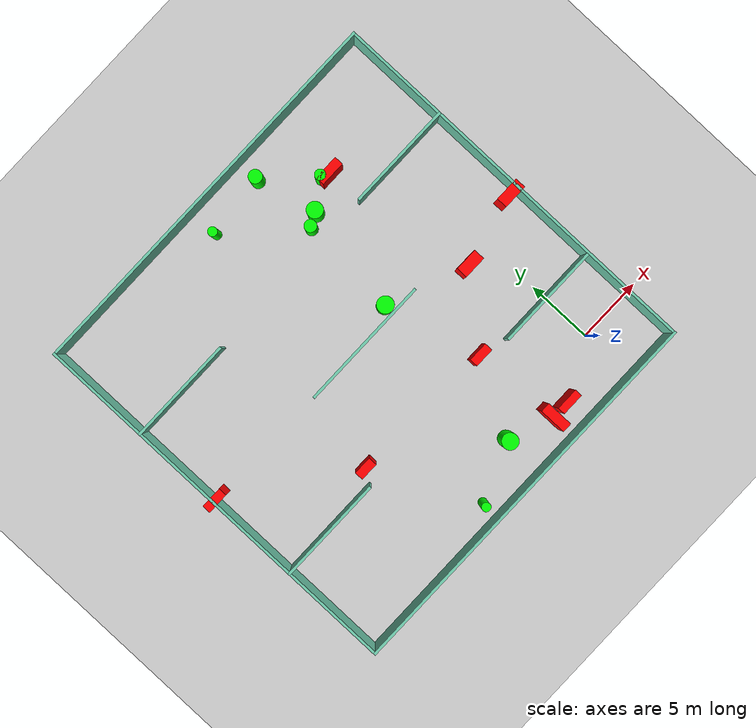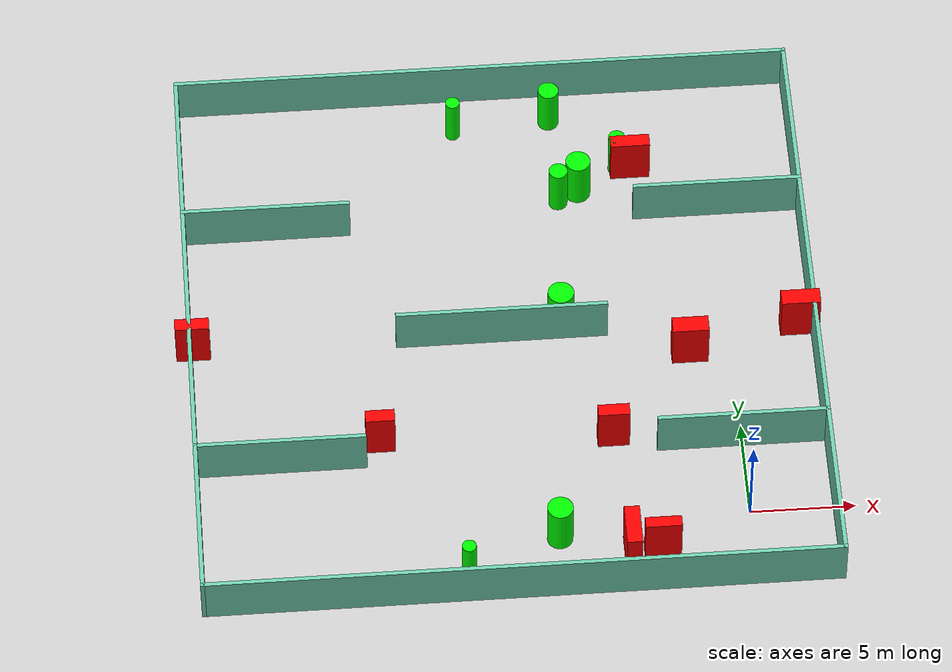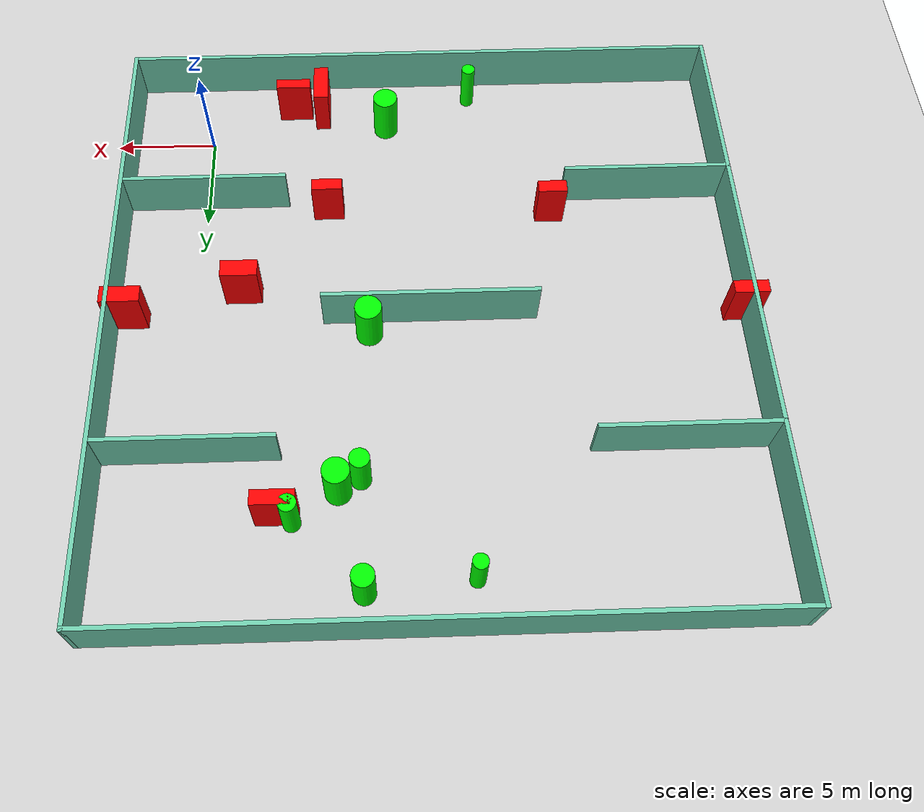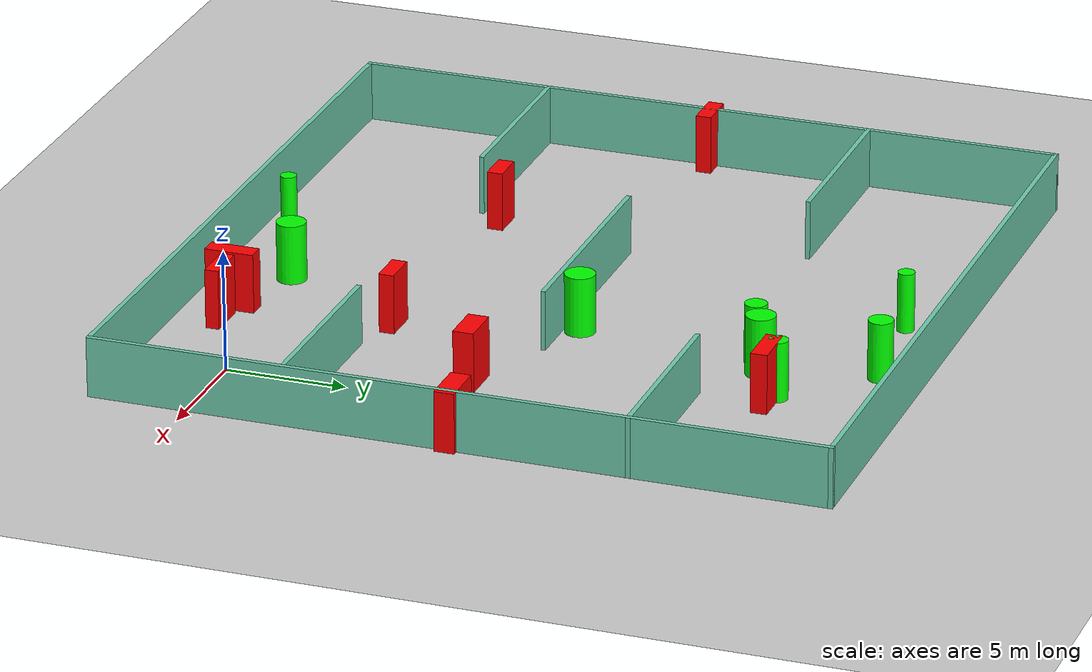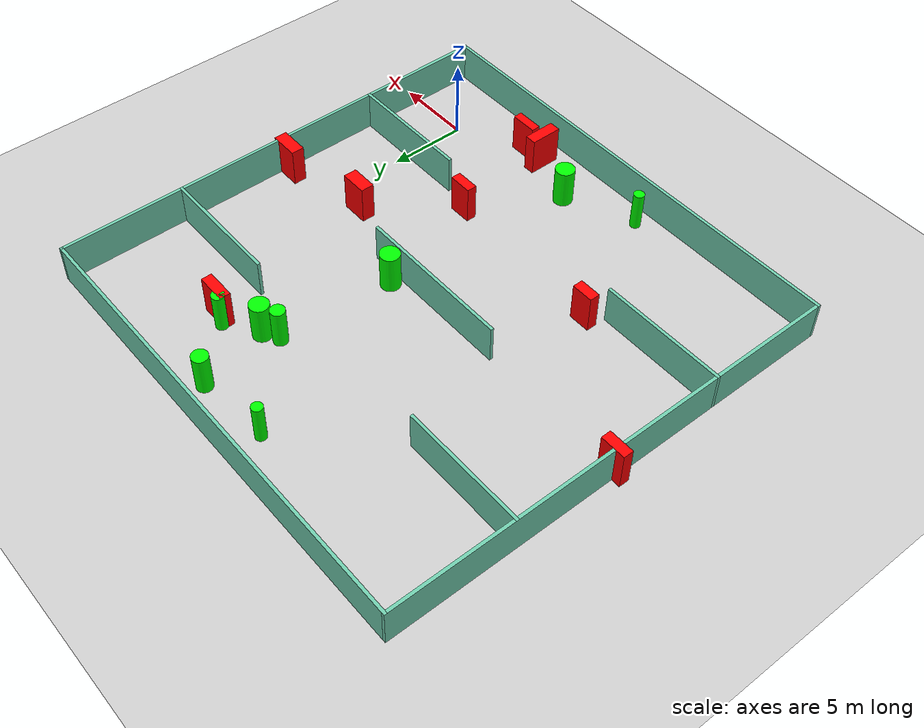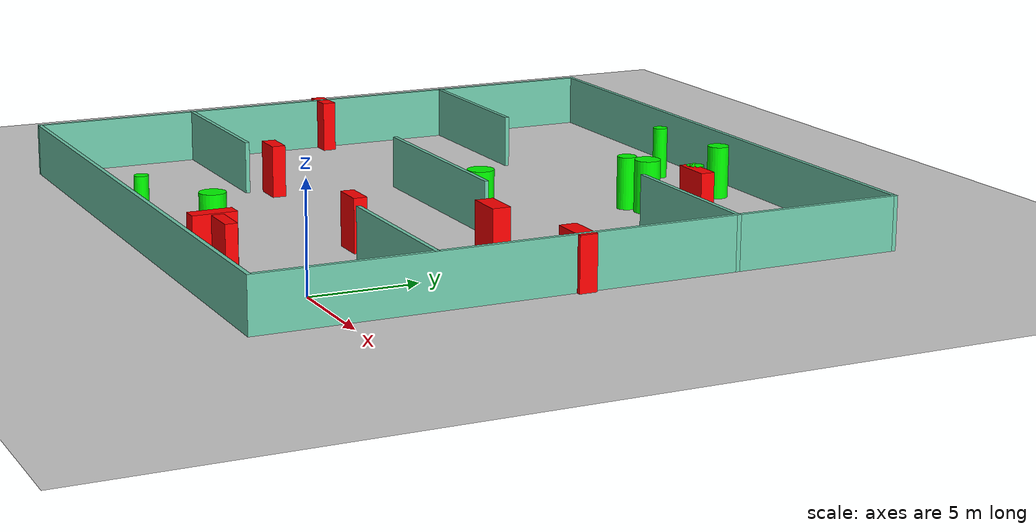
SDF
<sdf version="1.7">
 <world name="default">
  <light name="sun" type="directional">
   <pose>0 0 10 0 -0 0</pose>
   <diffuse>0.8 0.8 0.8 1</diffuse>
   <specular>0.2 0.2 0.2 1</specular>
   <attenuation>
    <range>1000</range>
    <constant>0.9</constant>
    <linear>0.01</linear>
    <quadratic>0.001</quadratic>
   </attenuation>
   <direction>-0.5 0.1 -0.9</direction>
   <spot><inner_angle>0</inner_angle><outer_angle>0</outer_angle><falloff>0</falloff></spot>
  </light>
  <model name="ground_plane">
   <static>1</static>
   <link name="link">
    <collision name="collision">
     <geometry><plane><normal>0 0 1</normal><size>100 100</size></plane></geometry>
     <surface>
      <contact><collide_bitmask>65535</collide_bitmask></contact>
      <friction><ode><mu>100</mu><mu2>50</mu2></ode></friction>
     </surface>
    </collision>
    <visual name="visual">
     <cast_shadows>0</cast_shadows>
     <geometry><plane><normal>0 0 1</normal><size>100 100</size></plane></geometry>
     <material>
      <script><uri>file://media/materials/scripts/gazebo.material</uri><name>Gazebo/Grey</name></script>
     </material>
    </visual>
   </link>
  </model>
  <gravity>0 0 -9.8</gravity>
  <magnetic_field>6e-06 2.3e-05 -4.2e-05</magnetic_field>
  <atmosphere type="adiabatic"/>
  <physics type="ode">
   <max_step_size>0.001</max_step_size>
   <real_time_factor>1</real_time_factor>
   <real_time_update_rate>1000</real_time_update_rate>
  </physics>
  <scene><ambient>0.4 0.4 0.4 1</ambient><background>0.7 0.7 0.7 1</background><shadows>1</shadows></scene>
  <spherical_coordinates>
   <surface_model>EARTH_WGS84</surface_model>
   <latitude_deg>0</latitude_deg>
   <longitude_deg>0</longitude_deg>
   <elevation>0</elevation>
   <heading_deg>0</heading_deg>
  </spherical_coordinates>
  <model name="my_base_walls">
   <link name="Wall_10">
    <collision name="Wall_10_Collision">
     <geometry><box><size>8.2 0.2 2.5</size></box></geometry>
     <pose>0 0 1.25 0 -0 0</pose>
    </collision>
    <visual name="Wall_10_Visual">
     <pose>0 0 1.25 0 -0 0</pose>
     <geometry><box><size>8.2 0.2 2.5</size></box></geometry>
     <material>
      <script><uri>file://media/materials/scripts/gazebo.material</uri><name>Gazebo/Grey</name></script>
      <ambient>0.435294 0.796078 0.67451 1</ambient>
     </material>
     <meta><layer>0</layer></meta>
    </visual>
    <pose>-11 -7 0 0 -0 0</pose>
   </link>
   <link name="Wall_12">
    <collision name="Wall_12_Collision">
     <geometry><box><size>8.2 0.2 2.5</size></box></geometry>
     <pose>0 0 1.25 0 -0 0</pose>
    </collision>
    <visual name="Wall_12_Visual">
     <pose>0 0 1.25 0 -0 0</pose>
     <geometry><box><size>8.2 0.2 2.5</size></box></geometry>
     <material>
      <script><uri>file://media/materials/scripts/gazebo.material</uri><name>Gazebo/Grey</name></script>
      <ambient>0.435294 0.796078 0.67451 1</ambient>
     </material>
     <meta><layer>0</layer></meta>
    </visual>
    <pose>-11 7 0 0 -0 0</pose>
   </link>
   <link name="Wall_14">
    <collision name="Wall_14_Collision">
     <geometry><box><size>8.2 0.2 2.5</size></box></geometry>
     <pose>0 0 1.25 0 -0 0</pose>
    </collision>
    <visual name="Wall_14_Visual">
     <pose>0 0 1.25 0 -0 0</pose>
     <geometry><box><size>8.2 0.2 2.5</size></box></geometry>
     <material>
      <script><uri>file://media/materials/scripts/gazebo.material</uri><name>Gazebo/Grey</name></script>
      <ambient>0.435294 0.796078 0.67451 1</ambient>
     </material>
     <meta><layer>0</layer></meta>
    </visual>
    <pose>11 7 0 0 -0 3.14159</pose>
   </link>
   <link name="Wall_16">
    <collision name="Wall_16_Collision">
     <geometry><box><size>10.2 0.2 2.5</size></box></geometry>
     <pose>0 0 1.25 0 -0 0</pose>
    </collision>
    <visual name="Wall_16_Visual">
     <pose>0 0 1.25 0 -0 0</pose>
     <geometry><box><size>10.2 0.2 2.5</size></box></geometry>
     <material>
      <script><uri>file://media/materials/scripts/gazebo.material</uri><name>Gazebo/Grey</name></script>
      <ambient>0.435294 0.796078 0.67451 1</ambient>
     </material>
     <meta><layer>0</layer></meta>
    </visual>
    <pose>0 0 0 0 -0 3.14159</pose>
   </link>
   <link name="Wall_2">
    <collision name="Wall_2_Collision">
     <geometry><box><size>30.2 0.2 2.5</size></box></geometry>
     <pose>0 0 1.25 0 -0 0</pose>
    </collision>
    <visual name="Wall_2_Visual">
     <pose>0 0 1.25 0 -0 0</pose>
     <geometry><box><size>30.2 0.2 2.5</size></box></geometry>
     <material>
      <script><uri>file://media/materials/scripts/gazebo.material</uri><name>Gazebo/Grey</name></script>
      <ambient>0.435294 0.796078 0.67451 1</ambient>
     </material>
     <meta><layer>0</layer></meta>
    </visual>
    <pose>0 -15 0 0 -0 3.14159</pose>
   </link>
   <link name="Wall_3">
    <collision name="Wall_3_Collision">
     <geometry><box><size>30.2 0.2 2.5</size></box></geometry>
     <pose>0 0 1.25 0 -0 0</pose>
    </collision>
    <visual name="Wall_3_Visual">
     <pose>0 0 1.25 0 -0 0</pose>
     <geometry><box><size>30.2 0.2 2.5</size></box></geometry>
     <material>
      <script><uri>file://media/materials/scripts/gazebo.material</uri><name>Gazebo/Grey</name></script>
      <ambient>0.435294 0.796078 0.67451 1</ambient>
     </material>
     <meta><layer>0</layer></meta>
    </visual>
    <pose>-15 0 0 0 -0 1.5708</pose>
   </link>
   <link name="Wall_4">
    <collision name="Wall_4_Collision">
     <geometry><box><size>30.2 0.2 2.5</size></box></geometry>
     <pose>0 0 1.25 0 -0 0</pose>
    </collision>
    <visual name="Wall_4_Visual">
     <pose>0 0 1.25 0 -0 0</pose>
     <geometry><box><size>30.2 0.2 2.5</size></box></geometry>
     <material>
      <script><uri>file://media/materials/scripts/gazebo.material</uri><name>Gazebo/Grey</name></script>
      <ambient>0.435294 0.796078 0.67451 1</ambient>
     </material>
     <meta><layer>0</layer></meta>
    </visual>
    <pose>0 15 0 0 -0 0</pose>
   </link>
   <link name="Wall_6">
    <collision name="Wall_6_Collision">
     <geometry><box><size>30.2 0.2 2.5</size></box></geometry>
     <pose>0 0 1.25 0 -0 0</pose>
    </collision>
    <visual name="Wall_6_Visual">
     <pose>0 0 1.25 0 -0 0</pose>
     <geometry><box><size>30.2 0.2 2.5</size></box></geometry>
     <material>
      <script><uri>file://media/materials/scripts/gazebo.material</uri><name>Gazebo/Grey</name></script>
      <ambient>0.435294 0.796078 0.67451 1</ambient>
     </material>
     <meta><layer>0</layer></meta>
    </visual>
    <pose>15 0 0 0 -0 1.5708</pose>
   </link>
   <link name="Wall_8">
    <collision name="Wall_8_Collision">
     <geometry><box><size>8.2 0.2 2.5</size></box></geometry>
     <pose>0 0 1.25 0 -0 0</pose>
    </collision>
    <visual name="Wall_8_Visual">
     <pose>0 0 1.25 0 -0 0</pose>
     <geometry><box><size>8.2 0.2 2.5</size></box></geometry>
     <material>
      <script><uri>file://media/materials/scripts/gazebo.material</uri><name>Gazebo/Grey</name></script>
      <ambient>0.435294 0.796078 0.67451 1</ambient>
     </material>
     <meta><layer>0</layer></meta>
    </visual>
    <pose>11 -7 0 0 -0 3.14159</pose>
   </link>
   <static>1</static>
   <pose>-11 11 0 0 -0 0</pose>
  </model>
  <model name="cylinder1">
   <static>1</static>
   <link name="link">
    <inertial>
     <mass>1</mass>
     <inertia><ixx>0.5</ixx><ixy>0</ixy><ixz>0</ixz><iyy>0.5</iyy><iyz>0</iyz><izz>1</izz></inertia>
    </inertial>
    <collision name="collision">
     <geometry><cylinder><radius>0.6084935798517578</radius><length>2.5</length></cylinder></geometry>
    </collision>
    <visual name="visual">
     <geometry><cylinder><radius>0.6084935798517578</radius><length>2.5</length></cylinder></geometry>
     <material>
      <ambient>0 1 0 1</ambient>
      <diffuse>0 1 0 1</diffuse>
      <specular>0.1 0.1 0.1 1</specular>
      <emissive>0 0 0 0</emissive>
     </material>
    </visual>
   </link>
   <pose>-6.643306263697784 19.715903905591563 1.25 0 0 0</pose>
  </model>
  <model name="cylinder2">
   <static>1</static>
   <link name="link">
    <inertial>
     <mass>1</mass>
     <inertia><ixx>0.5</ixx><ixy>0</ixy><ixz>0</ixz><iyy>0.5</iyy><iyz>0</iyz><izz>1</izz></inertia>
    </inertial>
    <collision name="collision">
     <geometry><cylinder><radius>0.6140340040569159</radius><length>2.5</length></cylinder></geometry>
    </collision>
    <visual name="visual">
     <geometry><cylinder><radius>0.6140340040569159</radius><length>2.5</length></cylinder></geometry>
     <material>
      <ambient>0 1 0 1</ambient>
      <diffuse>0 1 0 1</diffuse>
      <specular>0.1 0.1 0.1 1</specular>
      <emissive>0 0 0 0</emissive>
     </material>
    </visual>
   </link>
   <pose>-9.093699132174489 -0.8522857275020153 1.25 0 0 0</pose>
  </model>
  <model name="cylinder3">
   <static>1</static>
   <link name="link">
    <inertial>
     <mass>1</mass>
     <inertia><ixx>0.5</ixx><ixy>0</ixy><ixz>0</ixz><iyy>0.5</iyy><iyz>0</iyz><izz>1</izz></inertia>
    </inertial>
    <collision name="collision">
     <geometry><cylinder><radius>0.456668216963132</radius><length>2.5</length></cylinder></geometry>
    </collision>
    <visual name="visual">
     <geometry><cylinder><radius>0.456668216963132</radius><length>2.5</length></cylinder></geometry>
     <material>
      <ambient>0 1 0 1</ambient>
      <diffuse>0 1 0 1</diffuse>
      <specular>0.1 0.1 0.1 1</specular>
      <emissive>0 0 0 0</emissive>
     </material>
    </visual>
   </link>
   <pose>-7.648502321226477 19.18476351057007 1.25 0 0 0</pose>
  </model>
  <model name="cylinder4">
   <static>1</static>
   <link name="link">
    <inertial>
     <mass>1</mass>
     <inertia><ixx>0.5</ixx><ixy>0</ixy><ixz>0</ixz><iyy>0.5</iyy><iyz>0</iyz><izz>1</izz></inertia>
    </inertial>
    <collision name="collision">
     <geometry><cylinder><radius>0.40269562971788336</radius><length>2.5</length></cylinder></geometry>
    </collision>
    <visual name="visual">
     <geometry><cylinder><radius>0.40269562971788336</radius><length>2.5</length></cylinder></geometry>
     <material>
      <ambient>0 1 0 1</ambient>
      <diffuse>0 1 0 1</diffuse>
      <specular>0.1 0.1 0.1 1</specular>
      <emissive>0 0 0 0</emissive>
     </material>
    </visual>
   </link>
   <pose>-4.637938893357962 21.08986853828522 1.25 0 0 0</pose>
  </model>
  <model name="cylinder5">
   <static>1</static>
   <link name="link">
    <inertial>
     <mass>1</mass>
     <inertia><ixx>0.5</ixx><ixy>0</ixy><ixz>0</ixz><iyy>0.5</iyy><iyz>0</iyz><izz>1</izz></inertia>
    </inertial>
    <collision name="collision">
     <geometry><cylinder><radius>0.34818914144178303</radius><length>2.5</length></cylinder></geometry>
    </collision>
    <visual name="visual">
     <geometry><cylinder><radius>0.34818914144178303</radius><length>2.5</length></cylinder></geometry>
     <material>
      <ambient>0 1 0 1</ambient>
      <diffuse>0 1 0 1</diffuse>
      <specular>0.1 0.1 0.1 1</specular>
      <emissive>0 0 0 0</emissive>
     </material>
    </visual>
   </link>
   <pose>-12.500078192884317 23.81208245487946 1.25 0 0 0</pose>
  </model>
  <model name="cylinder6">
   <static>1</static>
   <link name="link">
    <inertial>
     <mass>1</mass>
     <inertia><ixx>0.5</ixx><ixy>0</ixy><ixz>0</ixz><iyy>0.5</iyy><iyz>0</iyz><izz>1</izz></inertia>
    </inertial>
    <collision name="collision">
     <geometry><cylinder><radius>0.33653228158376486</radius><length>2.5</length></cylinder></geometry>
    </collision>
    <visual name="visual">
     <geometry><cylinder><radius>0.33653228158376486</radius><length>2.5</length></cylinder></geometry>
     <material>
      <ambient>0 1 0 1</ambient>
      <diffuse>0 1 0 1</diffuse>
      <specular>0.1 0.1 0.1 1</specular>
      <emissive>0 0 0 0</emissive>
     </material>
    </visual>
   </link>
   <pose>-13.496410020095073 -2.7188233187882758 1.25 0 0 0</pose>
  </model>
  <model name="cylinder7">
   <static>1</static>
   <link name="link">
    <inertial>
     <mass>1</mass>
     <inertia><ixx>0.5</ixx><ixy>0</ixy><ixz>0</ixz><iyy>0.5</iyy><iyz>0</iyz><izz>1</izz></inertia>
    </inertial>
    <collision name="collision">
     <geometry><cylinder><radius>0.6310146741988745</radius><length>2.5</length></cylinder></geometry>
    </collision>
    <visual name="visual">
     <geometry><cylinder><radius>0.6310146741988745</radius><length>2.5</length></cylinder></geometry>
     <material>
      <ambient>0 1 0 1</ambient>
      <diffuse>0 1 0 1</diffuse>
      <specular>0.1 0.1 0.1 1</specular>
      <emissive>0 0 0 0</emissive>
     </material>
    </visual>
   </link>
   <pose>-8.09156135656681 11.759980694626494 1.25 0 0 0</pose>
  </model>
  <model name="cylinder8">
   <static>1</static>
   <link name="link">
    <inertial>
     <mass>1</mass>
     <inertia><ixx>0.5</ixx><ixy>0</ixy><ixz>0</ixz><iyy>0.5</iyy><iyz>0</iyz><izz>1</izz></inertia>
    </inertial>
    <collision name="collision">
     <geometry><cylinder><radius>0.5042751616859997</radius><length>2.5</length></cylinder></geometry>
    </collision>
    <visual name="visual">
     <geometry><cylinder><radius>0.5042751616859997</radius><length>2.5</length></cylinder></geometry>
     <material>
      <ambient>0 1 0 1</ambient>
      <diffuse>0 1 0 1</diffuse>
      <specular>0.1 0.1 0.1 1</specular>
      <emissive>0 0 0 0</emissive>
     </material>
    </visual>
   </link>
   <pose>-7.75411776317884 24.248272334618843 1.25 0 0 0</pose>
  </model>
  <model name="box1">
   <static>1</static>
   <link name="link">
    <inertial>
     <mass>1</mass>
     <inertia><ixx>0.083</ixx><ixy>0</ixy><ixz>0</ixz><iyy>0.083</iyy><iyz>0</iyz><izz>0.083</izz></inertia>
    </inertial>
    <collision name="collision">
     <geometry><box><size>1.6442500759668393 0.649191035904848 2.5</size></box></geometry>
    </collision>
    <visual name="visual">
     <geometry><box><size>1.6442500759668393 0.649191035904848 2.5</size></box></geometry>
     <material>
      <ambient>1 0 0 1</ambient>
      <diffuse>1 0 0 1</diffuse>
      <specular>0.1 0.1 0.1 1</specular>
      <emissive>0 0 0 0</emissive>
     </material>
    </visual>
    <sensor name="my_contact" type="contact">
     <contact><collision>box_collision</collision><topic>__default_topic__</topic></contact>
    </sensor>
   </link>
   <pose>-25.845910109991213 11.160712517881045 1.25 0 0 0</pose>
  </model>
  <model name="box2">
   <static>1</static>
   <link name="link">
    <inertial>
     <mass>1</mass>
     <inertia><ixx>0.083</ixx><ixy>0</ixy><ixz>0</ixz><iyy>0.083</iyy><iyz>0</iyz><izz>0.083</izz></inertia>
    </inertial>
    <collision name="collision">
     <geometry><box><size>1.7429238524234947 0.8560714982461457 2.5</size></box></geometry>
    </collision>
    <visual name="visual">
     <geometry><box><size>1.7429238524234947 0.8560714982461457 2.5</size></box></geometry>
     <material>
      <ambient>1 0 0 1</ambient>
      <diffuse>1 0 0 1</diffuse>
      <specular>0.1 0.1 0.1 1</specular>
      <emissive>0 0 0 0</emissive>
     </material>
    </visual>
    <sensor name="my_contact" type="contact">
     <contact><collision>box_collision</collision><topic>__default_topic__</topic></contact>
    </sensor>
   </link>
   <pose>-2.058311119558873 9.424277497572138 1.25 0 0 0</pose>
  </model>
  <model name="box3">
   <static>1</static>
   <link name="link">
    <inertial>
     <mass>1</mass>
     <inertia><ixx>0.083</ixx><ixy>0</ixy><ixz>0</ixz><iyy>0.083</iyy><iyz>0</iyz><izz>0.083</izz></inertia>
    </inertial>
    <collision name="collision">
     <geometry><box><size>1.7179451402865695 0.5669790512754792 2.5</size></box></geometry>
    </collision>
    <visual name="visual">
     <geometry><box><size>1.7179451402865695 0.5669790512754792 2.5</size></box></geometry>
     <material>
      <ambient>1 0 0 1</ambient>
      <diffuse>1 0 0 1</diffuse>
      <specular>0.1 0.1 0.1 1</specular>
      <emissive>0 0 0 0</emissive>
     </material>
    </visual>
    <sensor name="my_contact" type="contact">
     <contact><collision>box_collision</collision><topic>__default_topic__</topic></contact>
    </sensor>
   </link>
   <pose>-4.336388102676063 -1.9946573808503674 1.25 0 0 0</pose>
  </model>
  <model name="box4">
   <static>1</static>
   <link name="link">
    <inertial>
     <mass>1</mass>
     <inertia><ixx>0.083</ixx><ixy>0</ixy><ixz>0</ixz><iyy>0.083</iyy><iyz>0</iyz><izz>0.083</izz></inertia>
    </inertial>
    <collision name="collision">
     <geometry><box><size>1.3999337496153887 0.6588540597740788 2.5</size></box></geometry>
    </collision>
    <visual name="visual">
     <geometry><box><size>1.3999337496153887 0.6588540597740788 2.5</size></box></geometry>
     <material>
      <ambient>1 0 0 1</ambient>
      <diffuse>1 0 0 1</diffuse>
      <specular>0.1 0.1 0.1 1</specular>
      <emissive>0 0 0 0</emissive>
     </material>
    </visual>
    <sensor name="my_contact" type="contact">
     <contact><collision>box_collision</collision><topic>__default_topic__</topic></contact>
    </sensor>
   </link>
   <pose>-17.198718694073587 5.089685037332972 1.25 0 0 0</pose>
  </model>
  <model name="box5">
   <static>1</static>
   <link name="link">
    <inertial>
     <mass>1</mass>
     <inertia><ixx>0.083</ixx><ixy>0</ixy><ixz>0</ixz><iyy>0.083</iyy><iyz>0</iyz><izz>0.083</izz></inertia>
    </inertial>
    <collision name="collision">
     <geometry><box><size>1.5085794427610857 0.6325395091168364 2.5</size></box></geometry>
    </collision>
    <visual name="visual">
     <geometry><box><size>1.5085794427610857 0.6325395091168364 2.5</size></box></geometry>
     <material>
      <ambient>1 0 0 1</ambient>
      <diffuse>1 0 0 1</diffuse>
      <specular>0.1 0.1 0.1 1</specular>
      <emissive>0 0 0 0</emissive>
     </material>
    </visual>
    <sensor name="my_contact" type="contact">
     <contact><collision>box_collision</collision><topic>__default_topic__</topic></contact>
    </sensor>
   </link>
   <pose>-6.1294761339944905 4.6371830308282505 1.25 0 0 0</pose>
  </model>
  <model name="box6">
   <static>1</static>
   <link name="link">
    <inertial>
     <mass>1</mass>
     <inertia><ixx>0.083</ixx><ixy>0</ixy><ixz>0</ixz><iyy>0.083</iyy><iyz>0</iyz><izz>0.083</izz></inertia>
    </inertial>
    <collision name="collision">
     <geometry><box><size>1.8774193872693878 0.8278904606790063 2.5</size></box></geometry>
    </collision>
    <visual name="visual">
     <geometry><box><size>1.8774193872693878 0.8278904606790063 2.5</size></box></geometry>
     <material>
      <ambient>1 0 0 1</ambient>
      <diffuse>1 0 0 1</diffuse>
      <specular>0.1 0.1 0.1 1</specular>
      <emissive>0 0 0 0</emissive>
     </material>
    </visual>
    <sensor name="my_contact" type="contact">
     <contact><collision>box_collision</collision><topic>__default_topic__</topic></contact>
    </sensor>
   </link>
   <pose>3.3623568371866206 10.692421587773449 1.25 0 0 0</pose>
  </model>
  <model name="box7">
   <static>1</static>
   <link name="link">
    <inertial>
     <mass>1</mass>
     <inertia><ixx>0.083</ixx><ixy>0</ixy><ixz>0</ixz><iyy>0.083</iyy><iyz>0</iyz><izz>0.083</izz></inertia>
    </inertial>
    <collision name="collision">
     <geometry><box><size>1.9167478142337326 0.6782624336043623 2.5</size></box></geometry>
    </collision>
    <visual name="visual">
     <geometry><box><size>1.9167478142337326 0.6782624336043623 2.5</size></box></geometry>
     <material>
      <ambient>1 0 0 1</ambient>
      <diffuse>1 0 0 1</diffuse>
      <specular>0.1 0.1 0.1 1</specular>
      <emissive>0 0 0 0</emissive>
     </material>
    </visual>
    <sensor name="my_contact" type="contact">
     <contact><collision>box_collision</collision><topic>__default_topic__</topic></contact>
    </sensor>
   </link>
   <pose>-4.0160840263118125 20.815844627551822 1.25 0 0 0</pose>
  </model>
  <model name="box8">
   <static>1</static>
   <link name="link">
    <inertial>
     <mass>1</mass>
     <inertia><ixx>0.083</ixx><ixy>0</ixy><ixz>0</ixz><iyy>0.083</iyy><iyz>0</iyz><izz>0.083</izz></inertia>
    </inertial>
    <collision name="collision">
     <geometry><box><size>0.7349406899649749 2.0527882375268325 2.5</size></box></geometry>
    </collision>
    <visual name="visual">
     <geometry><box><size>0.7349406899649749 2.0527882375268325 2.5</size></box></geometry>
     <material>
      <ambient>1 0 0 1</ambient>
      <diffuse>1 0 0 1</diffuse>
      <specular>0.1 0.1 0.1 1</specular>
      <emissive>0 0 0 0</emissive>
     </material>
    </visual>
    <sensor name="my_contact" type="contact">
     <contact><collision>box_collision</collision><topic>__default_topic__</topic></contact>
    </sensor>
   </link>
   <pose>-5.762862614790933 -2.0382596645611377 1.25 0 0 0</pose>
  </model>
 </world>
</sdf>
